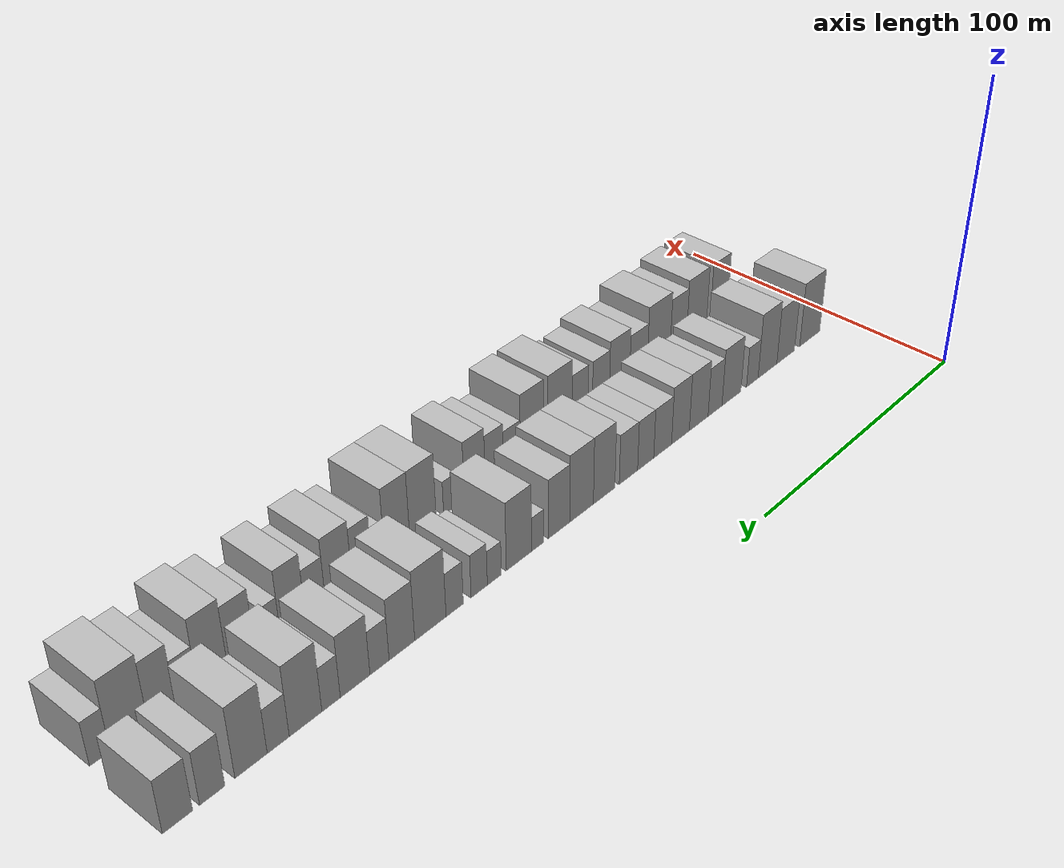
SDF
<sdf version="1.6">
 <world name="default">
  <model name="building_30">
   <static>1</static>
   <pose>50.0000 17.4689 0 0.000000 0.000000 0.000000</pose>
   <link name="link">
    <pose>0 0 12.00 0 0 0</pose>
    <collision name="collision"><geometry><box><size>20.0000 11.6728 24.0000</size></box></geometry></collision>
    <visual name="visual">
     <cast_shadows>0</cast_shadows>
     <geometry><box><size>20.0000 11.6728 24.0000</size></box></geometry>
     <material>
      <script>
       <uri>model://HANNAS_wall/materials/scripts</uri>
       <uri>model://HANNAS_wall/materials/textures</uri>
       <name>vrc/HANNAS_wall</name>
      </script>
     </material>
    </visual>
   </link>
  </model>
  <model name="building_31">
   <static>1</static>
   <pose>50.0000 31.2855 0 0.000000 0.000000 0.000000</pose>
   <link name="link">
    <pose>0 0 10.50 0 0 0</pose>
    <collision name="collision"><geometry><box><size>20.0000 9.9604 21.0000</size></box></geometry></collision>
    <visual name="visual">
     <cast_shadows>0</cast_shadows>
     <geometry><box><size>20.0000 9.9604 21.0000</size></box></geometry>
     <material>
      <script>
       <uri>model://HANNAS_wall/materials/scripts</uri>
       <uri>model://HANNAS_wall/materials/textures</uri>
       <name>vrc/HANNAS_wall</name>
      </script>
     </material>
    </visual>
   </link>
  </model>
  <model name="building_32">
   <static>1</static>
   <pose>50.0000 41.4286 0 0.000000 0.000000 0.000000</pose>
   <link name="link">
    <pose>0 0 12.00 0 0 0</pose>
    <collision name="collision"><geometry><box><size>20.0000 10.3258 24.0000</size></box></geometry></collision>
    <visual name="visual">
     <cast_shadows>0</cast_shadows>
     <geometry><box><size>20.0000 10.3258 24.0000</size></box></geometry>
     <material>
      <script>
       <uri>model://HANNAS_wall/materials/scripts</uri>
       <uri>model://HANNAS_wall/materials/textures</uri>
       <name>vrc/HANNAS_wall</name>
      </script>
     </material>
    </visual>
   </link>
  </model>
  <model name="building_33">
   <static>1</static>
   <pose>50.0000 49.7186 0 0.000000 0.000000 0.000000</pose>
   <link name="link">
    <pose>0 0 7.50 0 0 0</pose>
    <collision name="collision"><geometry><box><size>20.0000 6.2543 15.0000</size></box></geometry></collision>
    <visual name="visual">
     <cast_shadows>0</cast_shadows>
     <geometry><box><size>20.0000 6.2543 15.0000</size></box></geometry>
     <material>
      <script>
       <uri>model://HANNAS_wall/materials/scripts</uri>
       <uri>model://HANNAS_wall/materials/textures</uri>
       <name>vrc/HANNAS_wall</name>
      </script>
     </material>
    </visual>
   </link>
  </model>
  <model name="building_34">
   <static>1</static>
   <pose>50.0000 60.8240 0 0.000000 0.000000 0.000000</pose>
   <link name="link">
    <pose>0 0 10.50 0 0 0</pose>
    <collision name="collision"><geometry><box><size>20.0000 9.9564 21.0000</size></box></geometry></collision>
    <visual name="visual">
     <cast_shadows>0</cast_shadows>
     <geometry><box><size>20.0000 9.9564 21.0000</size></box></geometry>
     <material>
      <script>
       <uri>model://HANNAS_wall/materials/scripts</uri>
       <uri>model://HANNAS_wall/materials/textures</uri>
       <name>vrc/HANNAS_wall</name>
      </script>
     </material>
    </visual>
   </link>
  </model>
  <model name="building_35">
   <static>1</static>
   <pose>50.0000 69.4040 0 0.000000 0.000000 0.000000</pose>
   <link name="link">
    <pose>0 0 9.00 0 0 0</pose>
    <collision name="collision"><geometry><box><size>20.0000 7.2037 18.0000</size></box></geometry></collision>
    <visual name="visual">
     <cast_shadows>0</cast_shadows>
     <geometry><box><size>20.0000 7.2037 18.0000</size></box></geometry>
     <material>
      <script>
       <uri>model://HANNAS_wall/materials/scripts</uri>
       <uri>model://HANNAS_wall/materials/textures</uri>
       <name>vrc/HANNAS_wall</name>
      </script>
     </material>
    </visual>
   </link>
  </model>
  <model name="building_36">
   <static>1</static>
   <pose>50.0000 77.7374 0 0.000000 0.000000 0.000000</pose>
   <link name="link">
    <pose>0 0 10.50 0 0 0</pose>
    <collision name="collision"><geometry><box><size>20.0000 9.4630 21.0000</size></box></geometry></collision>
    <visual name="visual">
     <cast_shadows>0</cast_shadows>
     <geometry><box><size>20.0000 9.4630 21.0000</size></box></geometry>
     <material>
      <script>
       <uri>model://HANNAS_wall/materials/scripts</uri>
       <uri>model://HANNAS_wall/materials/textures</uri>
       <name>vrc/HANNAS_wall</name>
      </script>
     </material>
    </visual>
   </link>
  </model>
  <model name="building_37">
   <static>1</static>
   <pose>50.0000 86.8551 0 0.000000 0.000000 0.000000</pose>
   <link name="link">
    <pose>0 0 10.50 0 0 0</pose>
    <collision name="collision"><geometry><box><size>20.0000 8.7724 21.0000</size></box></geometry></collision>
    <visual name="visual">
     <cast_shadows>0</cast_shadows>
     <geometry><box><size>20.0000 8.7724 21.0000</size></box></geometry>
     <material>
      <script>
       <uri>model://HANNAS_wall/materials/scripts</uri>
       <uri>model://HANNAS_wall/materials/textures</uri>
       <name>vrc/HANNAS_wall</name>
      </script>
     </material>
    </visual>
   </link>
  </model>
  <model name="building_38">
   <static>1</static>
   <pose>50.0000 95.5552 0 0.000000 0.000000 0.000000</pose>
   <link name="link">
    <pose>0 0 9.00 0 0 0</pose>
    <collision name="collision"><geometry><box><size>20.0000 8.6279 18.0000</size></box></geometry></collision>
    <visual name="visual">
     <cast_shadows>0</cast_shadows>
     <geometry><box><size>20.0000 8.6279 18.0000</size></box></geometry>
     <material>
      <script>
       <uri>model://HANNAS_wall/materials/scripts</uri>
       <uri>model://HANNAS_wall/materials/textures</uri>
       <name>vrc/HANNAS_wall</name>
      </script>
     </material>
    </visual>
   </link>
  </model>
  <model name="building_39">
   <static>1</static>
   <pose>50.0000 103.6890 0 0.000000 0.000000 0.000000</pose>
   <link name="link">
    <pose>0 0 9.00 0 0 0</pose>
    <collision name="collision"><geometry><box><size>20.0000 7.6397 18.0000</size></box></geometry></collision>
    <visual name="visual">
     <cast_shadows>0</cast_shadows>
     <geometry><box><size>20.0000 7.6397 18.0000</size></box></geometry>
     <material>
      <script>
       <uri>model://HANNAS_wall/materials/scripts</uri>
       <uri>model://HANNAS_wall/materials/textures</uri>
       <name>vrc/HANNAS_wall</name>
      </script>
     </material>
    </visual>
   </link>
  </model>
  <model name="building_40">
   <static>1</static>
   <pose>50.0000 111.7709 0 0.000000 0.000000 0.000000</pose>
   <link name="link">
    <pose>0 0 9.00 0 0 0</pose>
    <collision name="collision"><geometry><box><size>20.0000 8.5241 18.0000</size></box></geometry></collision>
    <visual name="visual">
     <cast_shadows>0</cast_shadows>
     <geometry><box><size>20.0000 8.5241 18.0000</size></box></geometry>
     <material>
      <script>
       <uri>model://HANNAS_wall/materials/scripts</uri>
       <uri>model://HANNAS_wall/materials/textures</uri>
       <name>vrc/HANNAS_wall</name>
      </script>
     </material>
    </visual>
   </link>
  </model>
  <model name="building_41">
   <static>1</static>
   <pose>50.0000 122.8686 0 0.000000 0.000000 0.000000</pose>
   <link name="link">
    <pose>0 0 12.00 0 0 0</pose>
    <collision name="collision"><geometry><box><size>20.0000 9.6714 24.0000</size></box></geometry></collision>
    <visual name="visual">
     <cast_shadows>0</cast_shadows>
     <geometry><box><size>20.0000 9.6714 24.0000</size></box></geometry>
     <material>
      <script>
       <uri>model://HANNAS_wall/materials/scripts</uri>
       <uri>model://HANNAS_wall/materials/textures</uri>
       <name>vrc/HANNAS_wall</name>
      </script>
     </material>
    </visual>
   </link>
  </model>
  <model name="building_42">
   <static>1</static>
   <pose>50.0000 132.9142 0 0.000000 0.000000 0.000000</pose>
   <link name="link">
    <pose>0 0 12.00 0 0 0</pose>
    <collision name="collision"><geometry><box><size>20.0000 10.4198 24.0000</size></box></geometry></collision>
    <visual name="visual">
     <cast_shadows>0</cast_shadows>
     <geometry><box><size>20.0000 10.4198 24.0000</size></box></geometry>
     <material>
      <script>
       <uri>model://HANNAS_wall/materials/scripts</uri>
       <uri>model://HANNAS_wall/materials/textures</uri>
       <name>vrc/HANNAS_wall</name>
      </script>
     </material>
    </visual>
   </link>
  </model>
  <model name="building_43">
   <static>1</static>
   <pose>50.0000 142.6442 0 0.000000 0.000000 0.000000</pose>
   <link name="link">
    <pose>0 0 10.50 0 0 0</pose>
    <collision name="collision"><geometry><box><size>20.0000 9.0402 21.0000</size></box></geometry></collision>
    <visual name="visual">
     <cast_shadows>0</cast_shadows>
     <geometry><box><size>20.0000 9.0402 21.0000</size></box></geometry>
     <material>
      <script>
       <uri>model://HANNAS_wall/materials/scripts</uri>
       <uri>model://HANNAS_wall/materials/textures</uri>
       <name>vrc/HANNAS_wall</name>
      </script>
     </material>
    </visual>
   </link>
  </model>
  <model name="building_44">
   <static>1</static>
   <pose>50.0000 151.7030 0 0.000000 0.000000 0.000000</pose>
   <link name="link">
    <pose>0 0 6.00 0 0 0</pose>
    <collision name="collision"><geometry><box><size>20.0000 5.0773 12.0000</size></box></geometry></collision>
    <visual name="visual">
     <cast_shadows>0</cast_shadows>
     <geometry><box><size>20.0000 5.0773 12.0000</size></box></geometry>
     <material>
      <script>
       <uri>model://HANNAS_wall/materials/scripts</uri>
       <uri>model://HANNAS_wall/materials/textures</uri>
       <name>vrc/HANNAS_wall</name>
      </script>
     </material>
    </visual>
   </link>
  </model>
  <model name="building_45">
   <static>1</static>
   <pose>50.0000 159.4163 0 0.000000 0.000000 0.000000</pose>
   <link name="link">
    <pose>0 0 12.00 0 0 0</pose>
    <collision name="collision"><geometry><box><size>20.0000 10.3494 24.0000</size></box></geometry></collision>
    <visual name="visual">
     <cast_shadows>0</cast_shadows>
     <geometry><box><size>20.0000 10.3494 24.0000</size></box></geometry>
     <material>
      <script>
       <uri>model://HANNAS_wall/materials/scripts</uri>
       <uri>model://HANNAS_wall/materials/textures</uri>
       <name>vrc/HANNAS_wall</name>
      </script>
     </material>
    </visual>
   </link>
  </model>
  <model name="building_46">
   <static>1</static>
   <pose>50.0000 169.3795 0 0.000000 0.000000 0.000000</pose>
   <link name="link">
    <pose>0 0 6.00 0 0 0</pose>
    <collision name="collision"><geometry><box><size>20.0000 5.5770 12.0000</size></box></geometry></collision>
    <visual name="visual">
     <cast_shadows>0</cast_shadows>
     <geometry><box><size>20.0000 5.5770 12.0000</size></box></geometry>
     <material>
      <script>
       <uri>model://HANNAS_wall/materials/scripts</uri>
       <uri>model://HANNAS_wall/materials/textures</uri>
       <name>vrc/HANNAS_wall</name>
      </script>
     </material>
    </visual>
   </link>
  </model>
  <model name="building_47">
   <static>1</static>
   <pose>50.0000 175.3558 0 0.000000 0.000000 0.000000</pose>
   <link name="link">
    <pose>0 0 7.50 0 0 0</pose>
    <collision name="collision"><geometry><box><size>20.0000 6.3758 15.0000</size></box></geometry></collision>
    <visual name="visual">
     <cast_shadows>0</cast_shadows>
     <geometry><box><size>20.0000 6.3758 15.0000</size></box></geometry>
     <material>
      <script>
       <uri>model://HANNAS_wall/materials/scripts</uri>
       <uri>model://HANNAS_wall/materials/textures</uri>
       <name>vrc/HANNAS_wall</name>
      </script>
     </material>
    </visual>
   </link>
  </model>
  <model name="building_48">
   <static>1</static>
   <pose>50.0000 184.8294 0 0.000000 0.000000 0.000000</pose>
   <link name="link">
    <pose>0 0 7.50 0 0 0</pose>
    <collision name="collision"><geometry><box><size>20.0000 6.5715 15.0000</size></box></geometry></collision>
    <visual name="visual">
     <cast_shadows>0</cast_shadows>
     <geometry><box><size>20.0000 6.5715 15.0000</size></box></geometry>
     <material>
      <script>
       <uri>model://HANNAS_wall/materials/scripts</uri>
       <uri>model://HANNAS_wall/materials/textures</uri>
       <name>vrc/HANNAS_wall</name>
      </script>
     </material>
    </visual>
   </link>
  </model>
  <model name="building_49">
   <static>1</static>
   <pose>50.0000 193.9374 0 0.000000 0.000000 0.000000</pose>
   <link name="link">
    <pose>0 0 12.00 0 0 0</pose>
    <collision name="collision"><geometry><box><size>20.0000 11.6444 24.0000</size></box></geometry></collision>
    <visual name="visual">
     <cast_shadows>0</cast_shadows>
     <geometry><box><size>20.0000 11.6444 24.0000</size></box></geometry>
     <material>
      <script>
       <uri>model://HANNAS_wall/materials/scripts</uri>
       <uri>model://HANNAS_wall/materials/textures</uri>
       <name>vrc/HANNAS_wall</name>
      </script>
     </material>
    </visual>
   </link>
  </model>
  <model name="building_50">
   <static>1</static>
   <pose>50.0000 204.3791 0 0.000000 0.000000 0.000000</pose>
   <link name="link">
    <pose>0 0 10.50 0 0 0</pose>
    <collision name="collision"><geometry><box><size>20.0000 9.2392 21.0000</size></box></geometry></collision>
    <visual name="visual">
     <cast_shadows>0</cast_shadows>
     <geometry><box><size>20.0000 9.2392 21.0000</size></box></geometry>
     <material>
      <script>
       <uri>model://HANNAS_wall/materials/scripts</uri>
       <uri>model://HANNAS_wall/materials/textures</uri>
       <name>vrc/HANNAS_wall</name>
      </script>
     </material>
    </visual>
   </link>
  </model>
  <model name="building_51">
   <static>1</static>
   <pose>50.0000 212.3680 0 0.000000 0.000000 0.000000</pose>
   <link name="link">
    <pose>0 0 7.50 0 0 0</pose>
    <collision name="collision"><geometry><box><size>20.0000 6.7385 15.0000</size></box></geometry></collision>
    <visual name="visual">
     <cast_shadows>0</cast_shadows>
     <geometry><box><size>20.0000 6.7385 15.0000</size></box></geometry>
     <material>
      <script>
       <uri>model://HANNAS_wall/materials/scripts</uri>
       <uri>model://HANNAS_wall/materials/textures</uri>
       <name>vrc/HANNAS_wall</name>
      </script>
     </material>
    </visual>
   </link>
  </model>
  <model name="building_52">
   <static>1</static>
   <pose>50.0000 220.8307 0 0.000000 0.000000 0.000000</pose>
   <link name="link">
    <pose>0 0 10.50 0 0 0</pose>
    <collision name="collision"><geometry><box><size>20.0000 10.1869 21.0000</size></box></geometry></collision>
    <visual name="visual">
     <cast_shadows>0</cast_shadows>
     <geometry><box><size>20.0000 10.1869 21.0000</size></box></geometry>
     <material>
      <script>
       <uri>model://HANNAS_wall/materials/scripts</uri>
       <uri>model://HANNAS_wall/materials/textures</uri>
       <name>vrc/HANNAS_wall</name>
      </script>
     </material>
    </visual>
   </link>
  </model>
  <model name="building_53">
   <static>1</static>
   <pose>50.0000 229.0091 0 0.000000 0.000000 0.000000</pose>
   <link name="link">
    <pose>0 0 7.50 0 0 0</pose>
    <collision name="collision"><geometry><box><size>20.0000 6.1700 15.0000</size></box></geometry></collision>
    <visual name="visual">
     <cast_shadows>0</cast_shadows>
     <geometry><box><size>20.0000 6.1700 15.0000</size></box></geometry>
     <material>
      <script>
       <uri>model://HANNAS_wall/materials/scripts</uri>
       <uri>model://HANNAS_wall/materials/textures</uri>
       <name>vrc/HANNAS_wall</name>
      </script>
     </material>
    </visual>
   </link>
  </model>
  <model name="building_54">
   <static>1</static>
   <pose>50.0000 237.4223 0 0.000000 0.000000 0.000000</pose>
   <link name="link">
    <pose>0 0 12.00 0 0 0</pose>
    <collision name="collision"><geometry><box><size>20.0000 10.6562 24.0000</size></box></geometry></collision>
    <visual name="visual">
     <cast_shadows>0</cast_shadows>
     <geometry><box><size>20.0000 10.6562 24.0000</size></box></geometry>
     <material>
      <script>
       <uri>model://HANNAS_wall/materials/scripts</uri>
       <uri>model://HANNAS_wall/materials/textures</uri>
       <name>vrc/HANNAS_wall</name>
      </script>
     </material>
    </visual>
   </link>
  </model>
  <model name="building_55">
   <static>1</static>
   <pose>50.0000 246.2579 0 0.000000 0.000000 0.000000</pose>
   <link name="link">
    <pose>0 0 7.50 0 0 0</pose>
    <collision name="collision"><geometry><box><size>20.0000 7.0150 15.0000</size></box></geometry></collision>
    <visual name="visual">
     <cast_shadows>0</cast_shadows>
     <geometry><box><size>20.0000 7.0150 15.0000</size></box></geometry>
     <material>
      <script>
       <uri>model://HANNAS_wall/materials/scripts</uri>
       <uri>model://HANNAS_wall/materials/textures</uri>
       <name>vrc/HANNAS_wall</name>
      </script>
     </material>
    </visual>
   </link>
  </model>
  <model name="building_56">
   <static>1</static>
   <pose>50.0000 254.7818 0 0.000000 0.000000 0.000000</pose>
   <link name="link">
    <pose>0 0 12.00 0 0 0</pose>
    <collision name="collision"><geometry><box><size>20.0000 10.0329 24.0000</size></box></geometry></collision>
    <visual name="visual">
     <cast_shadows>0</cast_shadows>
     <geometry><box><size>20.0000 10.0329 24.0000</size></box></geometry>
     <material>
      <script>
       <uri>model://HANNAS_wall/materials/scripts</uri>
       <uri>model://HANNAS_wall/materials/textures</uri>
       <name>vrc/HANNAS_wall</name>
      </script>
     </material>
    </visual>
   </link>
  </model>
  <model name="building_57">
   <static>1</static>
   <pose>50.0000 266.5847 0 0.000000 0.000000 0.000000</pose>
   <link name="link">
    <pose>0 0 9.00 0 0 0</pose>
    <collision name="collision"><geometry><box><size>20.0000 7.5729 18.0000</size></box></geometry></collision>
    <visual name="visual">
     <cast_shadows>0</cast_shadows>
     <geometry><box><size>20.0000 7.5729 18.0000</size></box></geometry>
     <material>
      <script>
       <uri>model://HANNAS_wall/materials/scripts</uri>
       <uri>model://HANNAS_wall/materials/textures</uri>
       <name>vrc/HANNAS_wall</name>
      </script>
     </material>
    </visual>
   </link>
  </model>
  <model name="building_58">
   <static>1</static>
   <pose>50.0000 276.7673 0 0.000000 0.000000 0.000000</pose>
   <link name="link">
    <pose>0 0 9.00 0 0 0</pose>
    <collision name="collision"><geometry><box><size>20.0000 8.7923 18.0000</size></box></geometry></collision>
    <visual name="visual">
     <cast_shadows>0</cast_shadows>
     <geometry><box><size>20.0000 8.7923 18.0000</size></box></geometry>
     <material>
      <script>
       <uri>model://HANNAS_wall/materials/scripts</uri>
       <uri>model://HANNAS_wall/materials/textures</uri>
       <name>vrc/HANNAS_wall</name>
      </script>
     </material>
    </visual>
   </link>
  </model>
  <model name="building_86">
   <static>1</static>
   <pose>79.0000 28.1411 0 0.000000 0.000000 0.000000</pose>
   <link name="link">
    <pose>0 0 12.00 0 0 0</pose>
    <collision name="collision"><geometry><box><size>20.0000 9.7279 24.0000</size></box></geometry></collision>
    <visual name="visual">
     <cast_shadows>0</cast_shadows>
     <geometry><box><size>20.0000 9.7279 24.0000</size></box></geometry>
     <material>
      <script>
       <uri>model://HANNAS_wall/materials/scripts</uri>
       <uri>model://HANNAS_wall/materials/textures</uri>
       <name>vrc/HANNAS_wall</name>
      </script>
     </material>
    </visual>
   </link>
  </model>
  <model name="building_87">
   <static>1</static>
   <pose>79.0000 40.3979 0 0.000000 0.000000 0.000000</pose>
   <link name="link">
    <pose>0 0 12.00 0 0 0</pose>
    <collision name="collision"><geometry><box><size>20.0000 10.7858 24.0000</size></box></geometry></collision>
    <visual name="visual">
     <cast_shadows>0</cast_shadows>
     <geometry><box><size>20.0000 10.7858 24.0000</size></box></geometry>
     <material>
      <script>
       <uri>model://HANNAS_wall/materials/scripts</uri>
       <uri>model://HANNAS_wall/materials/textures</uri>
       <name>vrc/HANNAS_wall</name>
      </script>
     </material>
    </visual>
   </link>
  </model>
  <model name="building_88">
   <static>1</static>
   <pose>79.0000 50.1374 0 0.000000 0.000000 0.000000</pose>
   <link name="link">
    <pose>0 0 10.50 0 0 0</pose>
    <collision name="collision"><geometry><box><size>20.0000 8.6932 21.0000</size></box></geometry></collision>
    <visual name="visual">
     <cast_shadows>0</cast_shadows>
     <geometry><box><size>20.0000 8.6932 21.0000</size></box></geometry>
     <material>
      <script>
       <uri>model://HANNAS_wall/materials/scripts</uri>
       <uri>model://HANNAS_wall/materials/textures</uri>
       <name>vrc/HANNAS_wall</name>
      </script>
     </material>
    </visual>
   </link>
  </model>
  <model name="building_89">
   <static>1</static>
   <pose>79.0000 60.3967 0 0.000000 0.000000 0.000000</pose>
   <link name="link">
    <pose>0 0 12.00 0 0 0</pose>
    <collision name="collision"><geometry><box><size>20.0000 11.8255 24.0000</size></box></geometry></collision>
    <visual name="visual">
     <cast_shadows>0</cast_shadows>
     <geometry><box><size>20.0000 11.8255 24.0000</size></box></geometry>
     <material>
      <script>
       <uri>model://HANNAS_wall/materials/scripts</uri>
       <uri>model://HANNAS_wall/materials/textures</uri>
       <name>vrc/HANNAS_wall</name>
      </script>
     </material>
    </visual>
   </link>
  </model>
  <model name="building_90">
   <static>1</static>
   <pose>79.0000 70.7789 0 0.000000 0.000000 0.000000</pose>
   <link name="link">
    <pose>0 0 9.00 0 0 0</pose>
    <collision name="collision"><geometry><box><size>20.0000 8.9389 18.0000</size></box></geometry></collision>
    <visual name="visual">
     <cast_shadows>0</cast_shadows>
     <geometry><box><size>20.0000 8.9389 18.0000</size></box></geometry>
     <material>
      <script>
       <uri>model://HANNAS_wall/materials/scripts</uri>
       <uri>model://HANNAS_wall/materials/textures</uri>
       <name>vrc/HANNAS_wall</name>
      </script>
     </material>
    </visual>
   </link>
  </model>
  <model name="building_91">
   <static>1</static>
   <pose>79.0000 80.2578 0 0.000000 0.000000 0.000000</pose>
   <link name="link">
    <pose>0 0 10.50 0 0 0</pose>
    <collision name="collision"><geometry><box><size>20.0000 10.0189 21.0000</size></box></geometry></collision>
    <visual name="visual">
     <cast_shadows>0</cast_shadows>
     <geometry><box><size>20.0000 10.0189 21.0000</size></box></geometry>
     <material>
      <script>
       <uri>model://HANNAS_wall/materials/scripts</uri>
       <uri>model://HANNAS_wall/materials/textures</uri>
       <name>vrc/HANNAS_wall</name>
      </script>
     </material>
    </visual>
   </link>
  </model>
  <model name="building_92">
   <static>1</static>
   <pose>79.0000 89.3727 0 0.000000 0.000000 0.000000</pose>
   <link name="link">
    <pose>0 0 9.00 0 0 0</pose>
    <collision name="collision"><geometry><box><size>20.0000 8.2109 18.0000</size></box></geometry></collision>
    <visual name="visual">
     <cast_shadows>0</cast_shadows>
     <geometry><box><size>20.0000 8.2109 18.0000</size></box></geometry>
     <material>
      <script>
       <uri>model://HANNAS_wall/materials/scripts</uri>
       <uri>model://HANNAS_wall/materials/textures</uri>
       <name>vrc/HANNAS_wall</name>
      </script>
     </material>
    </visual>
   </link>
  </model>
  <model name="building_93">
   <static>1</static>
   <pose>79.0000 99.2618 0 0.000000 0.000000 0.000000</pose>
   <link name="link">
    <pose>0 0 9.00 0 0 0</pose>
    <collision name="collision"><geometry><box><size>20.0000 7.5673 18.0000</size></box></geometry></collision>
    <visual name="visual">
     <cast_shadows>0</cast_shadows>
     <geometry><box><size>20.0000 7.5673 18.0000</size></box></geometry>
     <material>
      <script>
       <uri>model://HANNAS_wall/materials/scripts</uri>
       <uri>model://HANNAS_wall/materials/textures</uri>
       <name>vrc/HANNAS_wall</name>
      </script>
     </material>
    </visual>
   </link>
  </model>
  <model name="building_94">
   <static>1</static>
   <pose>79.0000 108.6268 0 0.000000 0.000000 0.000000</pose>
   <link name="link">
    <pose>0 0 12.00 0 0 0</pose>
    <collision name="collision"><geometry><box><size>20.0000 11.1627 24.0000</size></box></geometry></collision>
    <visual name="visual">
     <cast_shadows>0</cast_shadows>
     <geometry><box><size>20.0000 11.1627 24.0000</size></box></geometry>
     <material>
      <script>
       <uri>model://HANNAS_wall/materials/scripts</uri>
       <uri>model://HANNAS_wall/materials/textures</uri>
       <name>vrc/HANNAS_wall</name>
      </script>
     </material>
    </visual>
   </link>
  </model>
  <model name="building_95">
   <static>1</static>
   <pose>79.0000 121.3653 0 0.000000 0.000000 0.000000</pose>
   <link name="link">
    <pose>0 0 12.00 0 0 0</pose>
    <collision name="collision"><geometry><box><size>20.0000 10.3143 24.0000</size></box></geometry></collision>
    <visual name="visual">
     <cast_shadows>0</cast_shadows>
     <geometry><box><size>20.0000 10.3143 24.0000</size></box></geometry>
     <material>
      <script>
       <uri>model://HANNAS_wall/materials/scripts</uri>
       <uri>model://HANNAS_wall/materials/textures</uri>
       <name>vrc/HANNAS_wall</name>
      </script>
     </material>
    </visual>
   </link>
  </model>
  <model name="building_96">
   <static>1</static>
   <pose>79.0000 130.2532 0 0.000000 0.000000 0.000000</pose>
   <link name="link">
    <pose>0 0 7.50 0 0 0</pose>
    <collision name="collision"><geometry><box><size>20.0000 7.4614 15.0000</size></box></geometry></collision>
    <visual name="visual">
     <cast_shadows>0</cast_shadows>
     <geometry><box><size>20.0000 7.4614 15.0000</size></box></geometry>
     <material>
      <script>
       <uri>model://HANNAS_wall/materials/scripts</uri>
       <uri>model://HANNAS_wall/materials/textures</uri>
       <name>vrc/HANNAS_wall</name>
      </script>
     </material>
    </visual>
   </link>
  </model>
  <model name="building_97">
   <static>1</static>
   <pose>79.0000 137.8888 0 0.000000 0.000000 0.000000</pose>
   <link name="link">
    <pose>0 0 9.00 0 0 0</pose>
    <collision name="collision"><geometry><box><size>20.0000 7.8098 18.0000</size></box></geometry></collision>
    <visual name="visual">
     <cast_shadows>0</cast_shadows>
     <geometry><box><size>20.0000 7.8098 18.0000</size></box></geometry>
     <material>
      <script>
       <uri>model://HANNAS_wall/materials/scripts</uri>
       <uri>model://HANNAS_wall/materials/textures</uri>
       <name>vrc/HANNAS_wall</name>
      </script>
     </material>
    </visual>
   </link>
  </model>
  <model name="building_98">
   <static>1</static>
   <pose>79.0000 146.2045 0 0.000000 0.000000 0.000000</pose>
   <link name="link">
    <pose>0 0 10.50 0 0 0</pose>
    <collision name="collision"><geometry><box><size>20.0000 8.8216 21.0000</size></box></geometry></collision>
    <visual name="visual">
     <cast_shadows>0</cast_shadows>
     <geometry><box><size>20.0000 8.8216 21.0000</size></box></geometry>
     <material>
      <script>
       <uri>model://HANNAS_wall/materials/scripts</uri>
       <uri>model://HANNAS_wall/materials/textures</uri>
       <name>vrc/HANNAS_wall</name>
      </script>
     </material>
    </visual>
   </link>
  </model>
  <model name="building_99">
   <static>1</static>
   <pose>79.0000 156.3556 0 0.000000 0.000000 0.000000</pose>
   <link name="link">
    <pose>0 0 6.00 0 0 0</pose>
    <collision name="collision"><geometry><box><size>20.0000 5.4806 12.0000</size></box></geometry></collision>
    <visual name="visual">
     <cast_shadows>0</cast_shadows>
     <geometry><box><size>20.0000 5.4806 12.0000</size></box></geometry>
     <material>
      <script>
       <uri>model://HANNAS_wall/materials/scripts</uri>
       <uri>model://HANNAS_wall/materials/textures</uri>
       <name>vrc/HANNAS_wall</name>
      </script>
     </material>
    </visual>
   </link>
  </model>
  <model name="building_100">
   <static>1</static>
   <pose>79.0000 167.3553 0 0.000000 0.000000 0.000000</pose>
   <link name="link">
    <pose>0 0 12.00 0 0 0</pose>
    <collision name="collision"><geometry><box><size>20.0000 10.5189 24.0000</size></box></geometry></collision>
    <visual name="visual">
     <cast_shadows>0</cast_shadows>
     <geometry><box><size>20.0000 10.5189 24.0000</size></box></geometry>
     <material>
      <script>
       <uri>model://HANNAS_wall/materials/scripts</uri>
       <uri>model://HANNAS_wall/materials/textures</uri>
       <name>vrc/HANNAS_wall</name>
      </script>
     </material>
    </visual>
   </link>
  </model>
  <model name="building_101">
   <static>1</static>
   <pose>79.0000 177.4677 0 0.000000 0.000000 0.000000</pose>
   <link name="link">
    <pose>0 0 12.00 0 0 0</pose>
    <collision name="collision"><geometry><box><size>20.0000 9.7059 24.0000</size></box></geometry></collision>
    <visual name="visual">
     <cast_shadows>0</cast_shadows>
     <geometry><box><size>20.0000 9.7059 24.0000</size></box></geometry>
     <material>
      <script>
       <uri>model://HANNAS_wall/materials/scripts</uri>
       <uri>model://HANNAS_wall/materials/textures</uri>
       <name>vrc/HANNAS_wall</name>
      </script>
     </material>
    </visual>
   </link>
  </model>
  <model name="building_102">
   <static>1</static>
   <pose>79.0000 184.7585 0 0.000000 0.000000 0.000000</pose>
   <link name="link">
    <pose>0 0 6.00 0 0 0</pose>
    <collision name="collision"><geometry><box><size>20.0000 4.8756 12.0000</size></box></geometry></collision>
    <visual name="visual">
     <cast_shadows>0</cast_shadows>
     <geometry><box><size>20.0000 4.8756 12.0000</size></box></geometry>
     <material>
      <script>
       <uri>model://HANNAS_wall/materials/scripts</uri>
       <uri>model://HANNAS_wall/materials/textures</uri>
       <name>vrc/HANNAS_wall</name>
      </script>
     </material>
    </visual>
   </link>
  </model>
  <model name="building_103">
   <static>1</static>
   <pose>79.0000 190.9005 0 0.000000 0.000000 0.000000</pose>
   <link name="link">
    <pose>0 0 9.00 0 0 0</pose>
    <collision name="collision"><geometry><box><size>20.0000 7.4082 18.0000</size></box></geometry></collision>
    <visual name="visual">
     <cast_shadows>0</cast_shadows>
     <geometry><box><size>20.0000 7.4082 18.0000</size></box></geometry>
     <material>
      <script>
       <uri>model://HANNAS_wall/materials/scripts</uri>
       <uri>model://HANNAS_wall/materials/textures</uri>
       <name>vrc/HANNAS_wall</name>
      </script>
     </material>
    </visual>
   </link>
  </model>
  <model name="building_104">
   <static>1</static>
   <pose>79.0000 199.4811 0 0.000000 0.000000 0.000000</pose>
   <link name="link">
    <pose>0 0 10.50 0 0 0</pose>
    <collision name="collision"><geometry><box><size>20.0000 9.7530 21.0000</size></box></geometry></collision>
    <visual name="visual">
     <cast_shadows>0</cast_shadows>
     <geometry><box><size>20.0000 9.7530 21.0000</size></box></geometry>
     <material>
      <script>
       <uri>model://HANNAS_wall/materials/scripts</uri>
       <uri>model://HANNAS_wall/materials/textures</uri>
       <name>vrc/HANNAS_wall</name>
      </script>
     </material>
    </visual>
   </link>
  </model>
  <model name="building_105">
   <static>1</static>
   <pose>79.0000 207.9535 0 0.000000 0.000000 0.000000</pose>
   <link name="link">
    <pose>0 0 7.50 0 0 0</pose>
    <collision name="collision"><geometry><box><size>20.0000 7.1919 15.0000</size></box></geometry></collision>
    <visual name="visual">
     <cast_shadows>0</cast_shadows>
     <geometry><box><size>20.0000 7.1919 15.0000</size></box></geometry>
     <material>
      <script>
       <uri>model://HANNAS_wall/materials/scripts</uri>
       <uri>model://HANNAS_wall/materials/textures</uri>
       <name>vrc/HANNAS_wall</name>
      </script>
     </material>
    </visual>
   </link>
  </model>
  <model name="building_106">
   <static>1</static>
   <pose>79.0000 215.9050 0 0.000000 0.000000 0.000000</pose>
   <link name="link">
    <pose>0 0 10.50 0 0 0</pose>
    <collision name="collision"><geometry><box><size>20.0000 8.7112 21.0000</size></box></geometry></collision>
    <visual name="visual">
     <cast_shadows>0</cast_shadows>
     <geometry><box><size>20.0000 8.7112 21.0000</size></box></geometry>
     <material>
      <script>
       <uri>model://HANNAS_wall/materials/scripts</uri>
       <uri>model://HANNAS_wall/materials/textures</uri>
       <name>vrc/HANNAS_wall</name>
      </script>
     </material>
    </visual>
   </link>
  </model>
  <model name="building_107">
   <static>1</static>
   <pose>79.0000 223.0057 0 0.000000 0.000000 0.000000</pose>
   <link name="link">
    <pose>0 0 6.00 0 0 0</pose>
    <collision name="collision"><geometry><box><size>20.0000 5.4902 12.0000</size></box></geometry></collision>
    <visual name="visual">
     <cast_shadows>0</cast_shadows>
     <geometry><box><size>20.0000 5.4902 12.0000</size></box></geometry>
     <material>
      <script>
       <uri>model://HANNAS_wall/materials/scripts</uri>
       <uri>model://HANNAS_wall/materials/textures</uri>
       <name>vrc/HANNAS_wall</name>
      </script>
     </material>
    </visual>
   </link>
  </model>
  <model name="building_108">
   <static>1</static>
   <pose>79.0000 233.2249 0 0.000000 0.000000 0.000000</pose>
   <link name="link">
    <pose>0 0 10.50 0 0 0</pose>
    <collision name="collision"><geometry><box><size>20.0000 8.9482 21.0000</size></box></geometry></collision>
    <visual name="visual">
     <cast_shadows>0</cast_shadows>
     <geometry><box><size>20.0000 8.9482 21.0000</size></box></geometry>
     <material>
      <script>
       <uri>model://HANNAS_wall/materials/scripts</uri>
       <uri>model://HANNAS_wall/materials/textures</uri>
       <name>vrc/HANNAS_wall</name>
      </script>
     </material>
    </visual>
   </link>
  </model>
  <model name="building_109">
   <static>1</static>
   <pose>79.0000 242.5274 0 0.000000 0.000000 0.000000</pose>
   <link name="link">
    <pose>0 0 12.00 0 0 0</pose>
    <collision name="collision"><geometry><box><size>20.0000 9.6568 24.0000</size></box></geometry></collision>
    <visual name="visual">
     <cast_shadows>0</cast_shadows>
     <geometry><box><size>20.0000 9.6568 24.0000</size></box></geometry>
     <material>
      <script>
       <uri>model://HANNAS_wall/materials/scripts</uri>
       <uri>model://HANNAS_wall/materials/textures</uri>
       <name>vrc/HANNAS_wall</name>
      </script>
     </material>
    </visual>
   </link>
  </model>
  <model name="building_110">
   <static>1</static>
   <pose>79.0000 250.8155 0 0.000000 0.000000 0.000000</pose>
   <link name="link">
    <pose>0 0 7.50 0 0 0</pose>
    <collision name="collision"><geometry><box><size>20.0000 6.9196 15.0000</size></box></geometry></collision>
    <visual name="visual">
     <cast_shadows>0</cast_shadows>
     <geometry><box><size>20.0000 6.9196 15.0000</size></box></geometry>
     <material>
      <script>
       <uri>model://HANNAS_wall/materials/scripts</uri>
       <uri>model://HANNAS_wall/materials/textures</uri>
       <name>vrc/HANNAS_wall</name>
      </script>
     </material>
    </visual>
   </link>
  </model>
  <model name="building_111">
   <static>1</static>
   <pose>79.0000 258.4898 0 0.000000 0.000000 0.000000</pose>
   <link name="link">
    <pose>0 0 10.50 0 0 0</pose>
    <collision name="collision"><geometry><box><size>20.0000 8.4289 21.0000</size></box></geometry></collision>
    <visual name="visual">
     <cast_shadows>0</cast_shadows>
     <geometry><box><size>20.0000 8.4289 21.0000</size></box></geometry>
     <material>
      <script>
       <uri>model://HANNAS_wall/materials/scripts</uri>
       <uri>model://HANNAS_wall/materials/textures</uri>
       <name>vrc/HANNAS_wall</name>
      </script>
     </material>
    </visual>
   </link>
  </model>
  <model name="building_112">
   <static>1</static>
   <pose>79.0000 268.3766 0 0.000000 0.000000 0.000000</pose>
   <link name="link">
    <pose>0 0 12.00 0 0 0</pose>
    <collision name="collision"><geometry><box><size>20.0000 11.3447 24.0000</size></box></geometry></collision>
    <visual name="visual">
     <cast_shadows>0</cast_shadows>
     <geometry><box><size>20.0000 11.3447 24.0000</size></box></geometry>
     <material>
      <script>
       <uri>model://HANNAS_wall/materials/scripts</uri>
       <uri>model://HANNAS_wall/materials/textures</uri>
       <name>vrc/HANNAS_wall</name>
      </script>
     </material>
    </visual>
   </link>
  </model>
  <model name="building_113">
   <static>1</static>
   <pose>79.0000 277.0497 0 0.000000 0.000000 0.000000</pose>
   <link name="link">
    <pose>0 0 7.50 0 0 0</pose>
    <collision name="collision"><geometry><box><size>20.0000 6.0016 15.0000</size></box></geometry></collision>
    <visual name="visual">
     <cast_shadows>0</cast_shadows>
     <geometry><box><size>20.0000 6.0016 15.0000</size></box></geometry>
     <material>
      <script>
       <uri>model://HANNAS_wall/materials/scripts</uri>
       <uri>model://HANNAS_wall/materials/textures</uri>
       <name>vrc/HANNAS_wall</name>
      </script>
     </material>
    </visual>
   </link>
  </model>
 </world>
</sdf>
